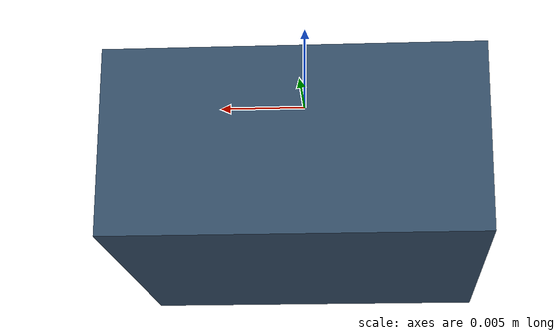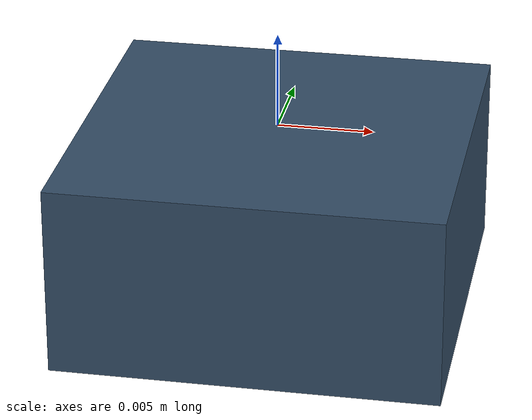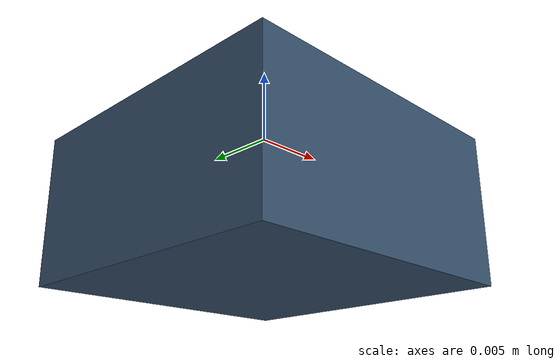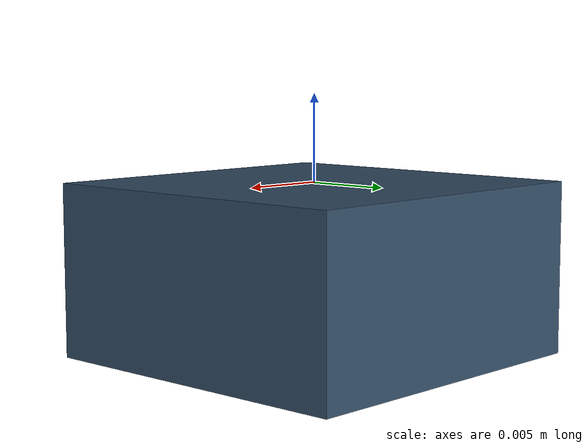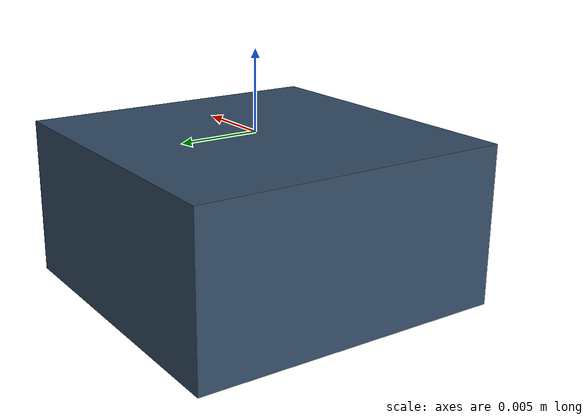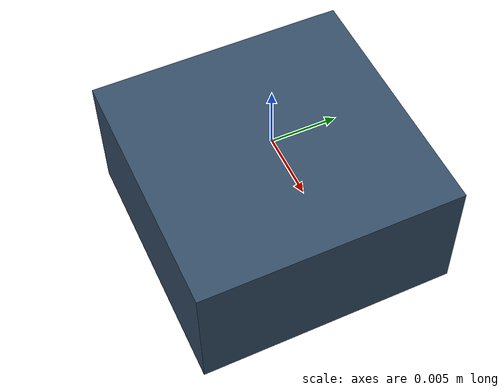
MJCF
<mujoco model="rangefinder_module">
  <!-- Illustrative visual-only housing behind the measurement origin. -->
  <asset>
    <material name="housing_material" rgba="0.2 0.3 0.4 1"/>
  </asset>
  <worldbody>
    <body name="sensor_root">
      <site name="sensor_base" pos="0 0 0" size="0.001" group="4"/>
      <geom name="housing_visual" type="box" pos="0 0 -0.005" size="0.01 0.01 0.005"
            material="housing_material" contype="0" conaffinity="0" mass="0" group="1"/>
    </body>
  </worldbody>
</mujoco>
